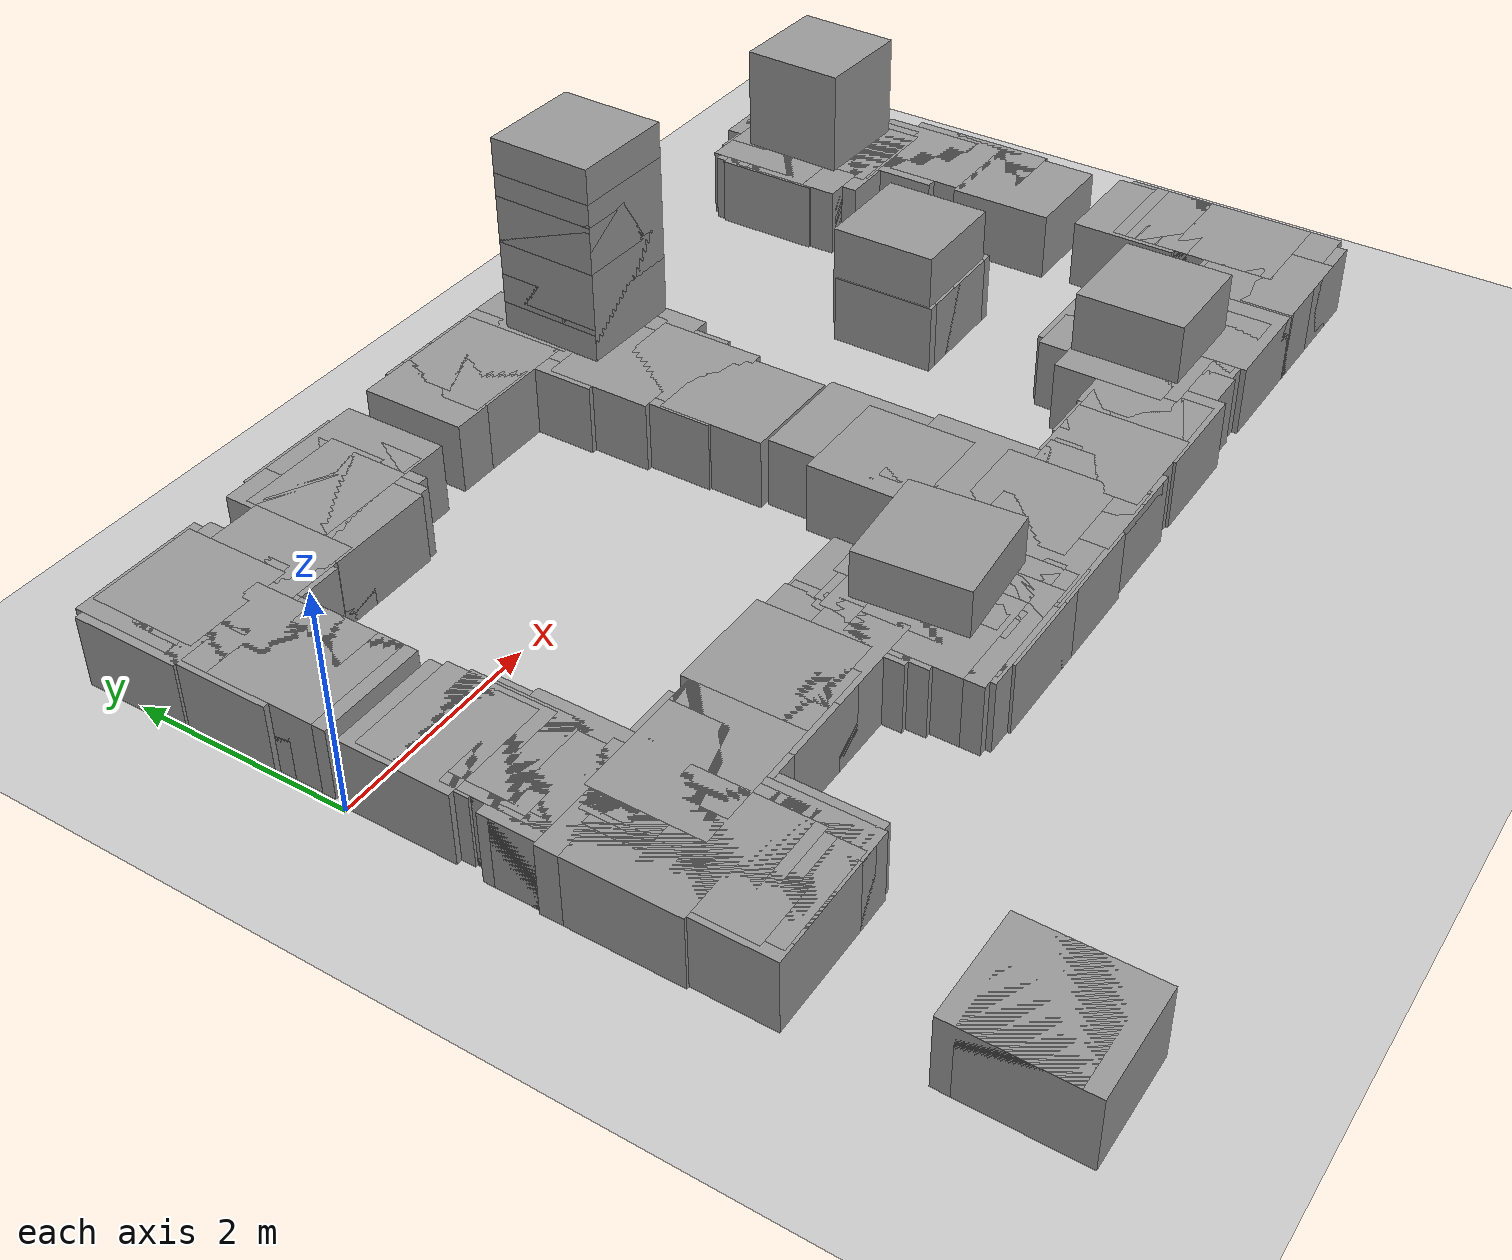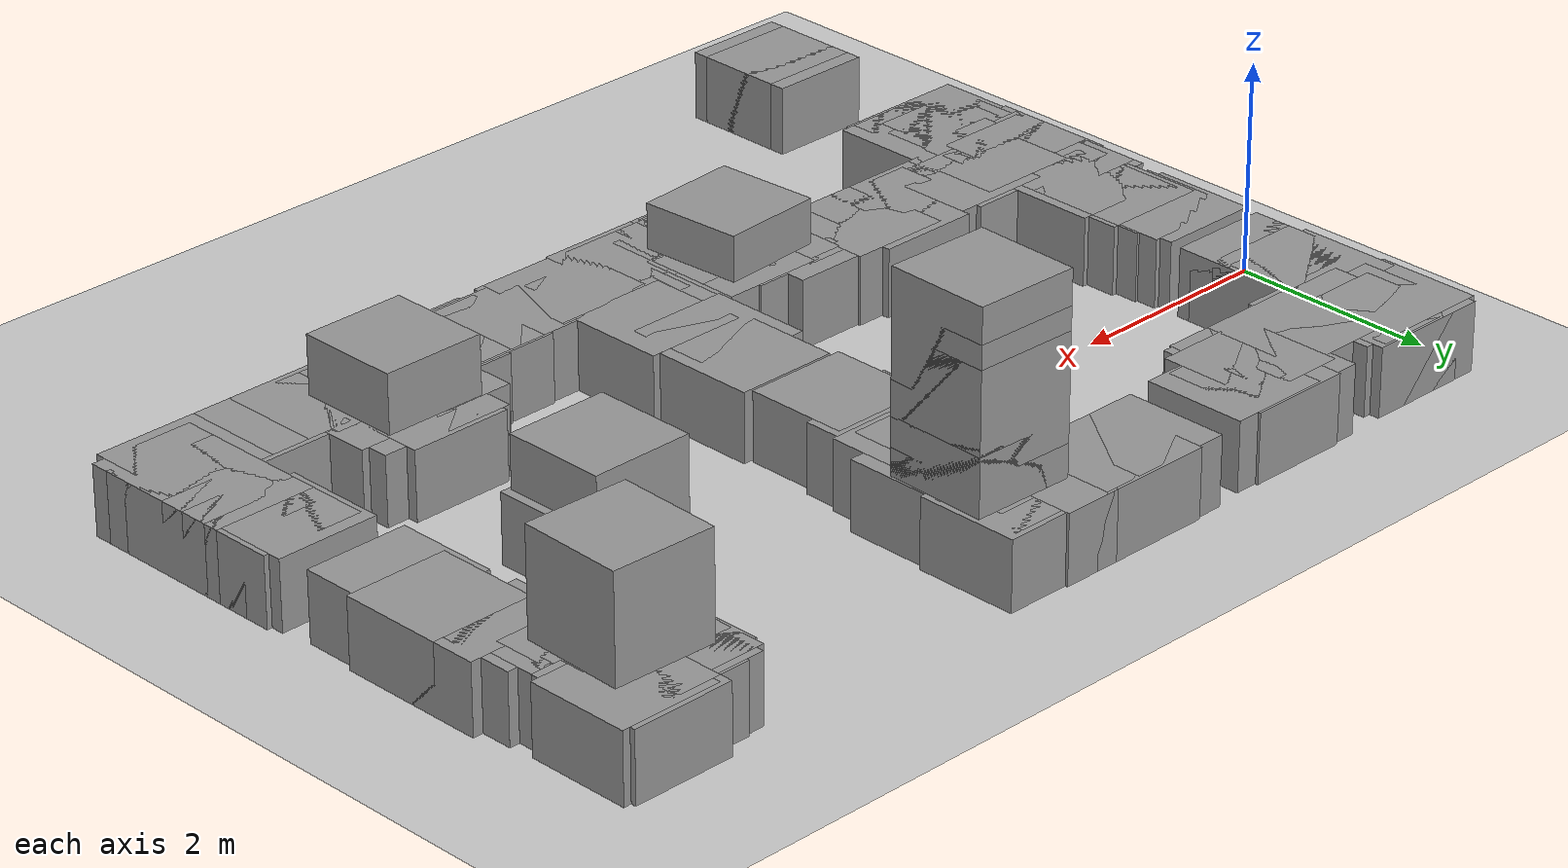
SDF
<sdf version="1.7">
 <world name="default">
  <model name="ground_plane">
   <static>1</static>
   <link name="link">
    <collision name="collision">
     <geometry><plane><normal>0 0 1</normal><size>100 100</size></plane></geometry>
     <surface>
      <contact><collide_bitmask>65535</collide_bitmask></contact>
      <friction><ode><mu>100</mu><mu2>50</mu2></ode></friction>
     </surface>
    </collision>
    <visual name="visual">
     <cast_shadows>0</cast_shadows>
     <geometry><plane><normal>0 0 1</normal><size>100 100</size></plane></geometry>
     <material>
      <script><uri>file://media/materials/scripts/gazebo.material</uri><name>Gazebo/Grey</name></script>
     </material>
    </visual>
   </link>
  </model>
  <include>
   <uri>model://unit_box</uri>
   <name>map_box_350</name>
   <pose>4.15719 2.19754 0.15000 0.00000 0.00000 0.00000</pose>
   <scale>0.05000 0.10000 0.80000</scale>
  </include>
  <include>
   <uri>model://unit_box</uri>
   <name>map_box_351</name>
   <pose>4.38219 2.19754 0.15000 0.00000 0.00000 0.00000</pose>
   <scale>0.10000 0.10000 0.80000</scale>
  </include>
  <include>
   <uri>model://unit_box</uri>
   <name>map_box_352</name>
   <pose>4.73219 2.19754 0.15000 0.00000 0.00000 0.00000</pose>
   <scale>0.40000 0.10000 0.80000</scale>
  </include>
  <include>
   <uri>model://unit_box</uri>
   <name>map_box_358</name>
   <pose>9.48219 2.12254 0.15000 0.00000 0.00000 0.00000</pose>
   <scale>0.10000 0.25000 0.80000</scale>
  </include>
  <include>
   <uri>model://unit_box</uri>
   <name>map_box_360</name>
   <pose>2.38219 2.14754 0.15000 0.00000 0.00000 0.00000</pose>
   <scale>0.40000 0.10000 0.80000</scale>
  </include>
  <include>
   <uri>model://unit_box</uri>
   <name>map_box_361</name>
   <pose>3.88219 2.17254 0.15000 0.00000 0.00000 0.00000</pose>
   <scale>0.50000 0.05000 0.80000</scale>
  </include>
  <include>
   <uri>model://unit_box</uri>
   <name>map_box_362</name>
   <pose>4.25719 2.17254 0.15000 0.00000 0.00000 0.00000</pose>
   <scale>0.15000 0.05000 0.80000</scale>
  </include>
  <include>
   <uri>model://unit_box</uri>
   <name>map_box_363</name>
   <pose>4.48219 2.17254 0.15000 0.00000 0.00000 0.00000</pose>
   <scale>0.10000 0.05000 0.80000</scale>
  </include>
  <include>
   <uri>model://unit_box</uri>
   <name>map_box_364</name>
   <pose>4.95719 1.04754 0.15000 0.00000 0.00000 0.00000</pose>
   <scale>0.05000 2.30000 0.80000</scale>
  </include>
  <include>
   <uri>model://unit_box</uri>
   <name>map_box_365</name>
   <pose>5.10719 1.82254 0.15000 0.00000 0.00000 0.00000</pose>
   <scale>0.05000 0.75000 0.80000</scale>
  </include>
  <include>
   <uri>model://unit_box</uri>
   <name>map_box_366</name>
   <pose>5.35719 2.17254 0.15000 0.00000 0.00000 0.00000</pose>
   <scale>0.15000 0.05000 0.80000</scale>
  </include>
  <include>
   <uri>model://unit_box</uri>
   <name>map_box_367</name>
   <pose>9.40719 2.17254 0.15000 0.00000 0.00000 0.00000</pose>
   <scale>0.05000 0.05000 0.80000</scale>
  </include>
  <include>
   <uri>model://unit_box</uri>
   <name>map_box_371</name>
   <pose>0.55719 2.09754 0.15000 0.00000 0.00000 0.00000</pose>
   <scale>0.25000 0.10000 0.80000</scale>
  </include>
  <include>
   <uri>model://unit_box</uri>
   <name>map_box_372</name>
   <pose>0.78219 2.09754 0.15000 0.00000 0.00000 0.00000</pose>
   <scale>0.10000 0.10000 0.80000</scale>
  </include>
  <include>
   <uri>model://unit_box</uri>
   <name>map_box_373</name>
   <pose>2.15719 2.12254 0.15000 0.00000 0.00000 0.00000</pose>
   <scale>0.05000 0.05000 0.80000</scale>
  </include>
  <include>
   <uri>model://unit_box</uri>
   <name>map_box_374</name>
   <pose>2.60719 2.12254 0.15000 0.00000 0.00000 0.00000</pose>
   <scale>0.05000 0.05000 0.80000</scale>
  </include>
  <include>
   <uri>model://unit_box</uri>
   <name>map_box_375</name>
   <pose>4.90719 1.59754 0.15000 0.00000 0.00000 0.00000</pose>
   <scale>0.05000 1.10000 0.80000</scale>
  </include>
  <include>
   <uri>model://unit_box</uri>
   <name>map_box_376</name>
   <pose>5.25719 2.12254 0.15000 0.00000 0.00000 0.00000</pose>
   <scale>0.25000 0.05000 0.80000</scale>
  </include>
  <include>
   <uri>model://unit_box</uri>
   <name>map_box_377</name>
   <pose>0.70719 2.07254 0.15000 0.00000 0.00000 0.00000</pose>
   <scale>0.05000 0.05000 0.80000</scale>
  </include>
  <include>
   <uri>model://unit_box</uri>
   <name>map_box_378</name>
   <pose>0.85719 1.99754 0.15000 0.00000 0.00000 0.00000</pose>
   <scale>0.05000 0.20000 0.80000</scale>
  </include>
  <include>
   <uri>model://unit_box</uri>
   <name>map_box_379</name>
   <pose>2.20719 1.94754 0.15000 0.00000 0.00000 0.00000</pose>
   <scale>0.05000 0.30000 0.80000</scale>
  </include>
  <include>
   <uri>model://unit_box</uri>
   <name>map_box_380</name>
   <pose>5.15719 0.99754 0.15000 0.00000 0.00000 0.00000</pose>
   <scale>0.05000 2.20000 0.80000</scale>
  </include>
  <include>
   <uri>model://unit_box</uri>
   <name>map_box_381</name>
   <pose>9.10719 2.04754 0.15000 0.00000 0.00000 0.00000</pose>
   <scale>0.05000 0.10000 0.80000</scale>
  </include>
  <include>
   <uri>model://unit_box</uri>
   <name>map_box_382</name>
   <pose>9.40719 2.04754 0.15000 0.00000 0.00000 0.00000</pose>
   <scale>0.05000 0.10000 0.80000</scale>
  </include>
  <include>
   <uri>model://unit_box</uri>
   <name>map_box_385</name>
   <pose>0.48219 2.02254 0.15000 0.00000 0.00000 0.00000</pose>
   <scale>0.10000 0.05000 0.80000</scale>
  </include>
  <include>
   <uri>model://unit_box</uri>
   <name>map_box_386</name>
   <pose>8.93219 2.02254 0.15000 0.00000 0.00000 0.00000</pose>
   <scale>0.30000 0.05000 0.80000</scale>
  </include>
  <include>
   <uri>model://unit_box</uri>
   <name>map_box_387</name>
   <pose>9.25719 2.02254 0.15000 0.00000 0.00000 0.00000</pose>
   <scale>0.25000 0.05000 0.80000</scale>
  </include>
  <include>
   <uri>model://unit_box</uri>
   <name>map_box_390</name>
   <pose>0.65719 1.97254 0.15000 0.00000 0.00000 0.00000</pose>
   <scale>0.05000 0.05000 0.80000</scale>
  </include>
  <include>
   <uri>model://unit_box</uri>
   <name>map_box_391</name>
   <pose>8.85719 1.94754 0.15000 0.00000 0.00000 0.00000</pose>
   <scale>0.15000 0.10000 0.80000</scale>
  </include>
  <include>
   <uri>model://unit_box</uri>
   <name>map_box_392</name>
   <pose>0.50719 1.17254 0.15000 0.00000 0.00000 0.00000</pose>
   <scale>0.05000 1.55000 0.80000</scale>
  </include>
  <include>
   <uri>model://unit_box</uri>
   <name>map_box_393</name>
   <pose>0.78219 1.89754 0.15000 0.00000 0.00000 0.00000</pose>
   <scale>0.10000 0.10000 0.80000</scale>
  </include>
  <include>
   <uri>model://unit_box</uri>
   <name>map_box_395</name>
   <pose>0.90719 1.84754 0.15000 0.00000 0.00000 0.00000</pose>
   <scale>0.05000 0.10000 0.80000</scale>
  </include>
  <include>
   <uri>model://unit_box</uri>
   <name>map_box_396</name>
   <pose>1.20719 1.84754 0.15000 0.00000 0.00000 0.00000</pose>
   <scale>0.25000 0.10000 0.80000</scale>
  </include>
  <include>
   <uri>model://unit_box</uri>
   <name>map_box_397</name>
   <pose>1.40719 1.84754 0.15000 0.00000 0.00000 0.00000</pose>
   <scale>0.05000 0.10000 0.80000</scale>
  </include>
  <include>
   <uri>model://unit_box</uri>
   <name>map_box_398</name>
   <pose>1.80719 1.84754 0.15000 0.00000 0.00000 0.00000</pose>
   <scale>0.35000 0.10000 0.80000</scale>
  </include>
  <include>
   <uri>model://unit_box</uri>
   <name>map_box_399</name>
   <pose>2.10719 1.84754 0.15000 0.00000 0.00000 0.00000</pose>
   <scale>0.15000 0.10000 0.80000</scale>
  </include>
  <include>
   <uri>model://unit_box</uri>
   <name>map_box_400</name>
   <pose>8.83219 1.84754 0.15000 0.00000 0.00000 0.00000</pose>
   <scale>0.10000 0.10000 0.80000</scale>
  </include>
  <include>
   <uri>model://unit_box</uri>
   <name>map_box_402</name>
   <pose>0.83219 1.82254 0.15000 0.00000 0.00000 0.00000</pose>
   <scale>0.10000 0.05000 0.80000</scale>
  </include>
  <include>
   <uri>model://unit_box</uri>
   <name>map_box_403</name>
   <pose>1.00719 1.82254 0.15000 0.00000 0.00000 0.00000</pose>
   <scale>0.15000 0.05000 0.80000</scale>
  </include>
  <include>
   <uri>model://unit_box</uri>
   <name>map_box_404</name>
   <pose>1.35719 1.82254 0.15000 0.00000 0.00000 0.00000</pose>
   <scale>0.05000 0.05000 0.80000</scale>
  </include>
  <include>
   <uri>model://unit_box</uri>
   <name>map_box_405</name>
   <pose>1.53219 1.82254 0.15000 0.00000 0.00000 0.00000</pose>
   <scale>0.20000 0.05000 0.80000</scale>
  </include>
  <include>
   <uri>model://unit_box</uri>
   <name>map_box_406</name>
   <pose>2.00719 1.82254 0.15000 0.00000 0.00000 0.00000</pose>
   <scale>0.05000 0.05000 0.80000</scale>
  </include>
  <include>
   <uri>model://unit_box</uri>
   <name>map_box_407</name>
   <pose>8.90719 1.59754 0.15000 0.00000 0.00000 0.00000</pose>
   <scale>0.05000 0.50000 0.80000</scale>
  </include>
  <include>
   <uri>model://unit_box</uri>
   <name>map_box_409</name>
   <pose>0.95719 1.77254 0.15000 0.00000 0.00000 0.00000</pose>
   <scale>0.05000 0.05000 0.80000</scale>
  </include>
  <include>
   <uri>model://unit_box</uri>
   <name>map_box_410</name>
   <pose>8.85719 1.59754 0.15000 0.00000 0.00000 0.00000</pose>
   <scale>0.05000 0.40000 0.80000</scale>
  </include>
  <include>
   <uri>model://unit_box</uri>
   <name>map_box_413</name>
   <pose>9.25719 1.49754 0.15000 0.00000 0.00000 0.00000</pose>
   <scale>0.05000 0.20000 0.80000</scale>
  </include>
  <include>
   <uri>model://unit_box</uri>
   <name>map_box_414</name>
   <pose>9.40719 1.52254 0.15000 0.00000 0.00000 0.00000</pose>
   <scale>0.15000 0.15000 0.80000</scale>
  </include>
  <include>
   <uri>model://unit_box</uri>
   <name>map_box_418</name>
   <pose>9.18219 1.47254 0.15000 0.00000 0.00000 0.00000</pose>
   <scale>0.10000 0.15000 0.80000</scale>
  </include>
  <include>
   <uri>model://unit_box</uri>
   <name>map_box_419</name>
   <pose>9.30719 1.47254 0.15000 0.00000 0.00000 0.00000</pose>
   <scale>0.05000 0.15000 0.80000</scale>
  </include>
  <include>
   <uri>model://unit_box</uri>
   <name>map_box_420</name>
   <pose>9.50719 0.89754 0.15000 0.00000 0.00000 0.00000</pose>
   <scale>0.05000 1.30000 0.80000</scale>
  </include>
  <include>
   <uri>model://unit_box</uri>
   <name>map_box_427</name>
   <pose>9.03219 1.44754 0.15000 0.00000 0.00000 0.00000</pose>
   <scale>0.20000 0.10000 0.80000</scale>
  </include>
  <include>
   <uri>model://unit_box</uri>
   <name>map_box_428</name>
   <pose>9.55719 -0.35246 0.15000 0.00000 0.00000 0.00000</pose>
   <scale>0.05000 3.70000 0.80000</scale>
  </include>
  <include>
   <uri>model://unit_box</uri>
   <name>map_box_441</name>
   <pose>5.10719 0.64754 0.15000 0.00000 0.00000 0.00000</pose>
   <scale>0.05000 1.50000 0.80000</scale>
  </include>
  <include>
   <uri>model://unit_box</uri>
   <name>map_box_442</name>
   <pose>5.30719 1.34754 0.15000 0.00000 0.00000 0.00000</pose>
   <scale>0.25000 0.10000 0.80000</scale>
  </include>
  <include>
   <uri>model://unit_box</uri>
   <name>map_box_479</name>
   <pose>0.55719 1.02254 0.15000 0.00000 0.00000 0.00000</pose>
   <scale>0.05000 0.15000 0.80000</scale>
  </include>
  <include>
   <uri>model://unit_box</uri>
   <name>map_box_485</name>
   <pose>0.55719 0.77254 0.15000 0.00000 0.00000 0.00000</pose>
   <scale>0.05000 0.05000 0.80000</scale>
  </include>
  <include>
   <uri>model://unit_box</uri>
   <name>map_box_486</name>
   <pose>5.00719 0.44754 0.15000 0.00000 0.00000 0.00000</pose>
   <scale>0.05000 0.60000 0.80000</scale>
  </include>
  <include>
   <uri>model://unit_box</uri>
   <name>map_box_487</name>
   <pose>0.55719 0.64754 0.15000 0.00000 0.00000 0.00000</pose>
   <scale>0.05000 0.10000 0.80000</scale>
  </include>
  <include>
   <uri>model://unit_box</uri>
   <name>map_box_488</name>
   <pose>9.60719 0.59754 0.15000 0.00000 0.00000 0.00000</pose>
   <scale>0.05000 0.20000 0.80000</scale>
  </include>
  <include>
   <uri>model://unit_box</uri>
   <name>map_box_503</name>
   <pose>9.60719 0.17254 0.15000 0.00000 0.00000 0.00000</pose>
   <scale>0.05000 0.45000 0.80000</scale>
  </include>
  <include>
   <uri>model://unit_box</uri>
   <name>map_box_528</name>
   <pose>5.03219 -0.05246 0.15000 0.00000 0.00000 0.00000</pose>
   <scale>0.10000 0.10000 0.80000</scale>
  </include>
  <include>
   <uri>model://unit_box</uri>
   <name>map_box_534</name>
   <pose>7.55719 -0.22746 0.15000 0.00000 0.00000 0.00000</pose>
   <scale>0.15000 0.15000 0.80000</scale>
  </include>
  <include>
   <uri>model://unit_box</uri>
   <name>map_box_536</name>
   <pose>7.65719 -0.22746 0.15000 0.00000 0.00000 0.00000</pose>
   <scale>0.05000 0.05000 0.80000</scale>
  </include>
  <include>
   <uri>model://unit_box</uri>
   <name>map_box_538</name>
   <pose>9.60719 -1.62746 0.15000 0.00000 0.00000 0.00000</pose>
   <scale>0.05000 2.75000 0.80000</scale>
  </include>
  <include>
   <uri>model://unit_box</uri>
   <name>map_box_542</name>
   <pose>0.53219 -0.47746 0.15000 0.00000 0.00000 0.00000</pose>
   <scale>0.20000 0.05000 0.80000</scale>
  </include>
  <include>
   <uri>model://unit_box</uri>
   <name>map_box_543</name>
   <pose>0.58219 -0.60246 0.15000 0.00000 0.00000 0.00000</pose>
   <scale>0.10000 0.20000 0.80000</scale>
  </include>
  <include>
   <uri>model://unit_box</uri>
   <name>map_box_545</name>
   <pose>0.65719 -1.02746 0.15000 0.00000 0.00000 0.00000</pose>
   <scale>0.05000 0.95000 0.80000</scale>
  </include>
  <include>
   <uri>model://unit_box</uri>
   <name>map_box_547</name>
   <pose>0.60719 -0.80246 0.15000 0.00000 0.00000 0.00000</pose>
   <scale>0.05000 0.20000 0.80000</scale>
  </include>
  <include>
   <uri>model://unit_box</uri>
   <name>map_box_550</name>
   <pose>0.60719 -1.02746 0.15000 0.00000 0.00000 0.00000</pose>
   <scale>0.05000 0.15000 0.80000</scale>
  </include>
  <include>
   <uri>model://unit_box</uri>
   <name>map_box_553</name>
   <pose>5.10719 -1.07746 0.15000 0.00000 0.00000 0.00000</pose>
   <scale>0.25000 0.05000 0.80000</scale>
  </include>
  <include>
   <uri>model://unit_box</uri>
   <name>map_box_558</name>
   <pose>4.98219 -1.52746 0.15000 0.00000 0.00000 0.00000</pose>
   <scale>0.10000 0.85000 0.80000</scale>
  </include>
  <include>
   <uri>model://unit_box</uri>
   <name>map_box_559</name>
   <pose>5.18219 -2.07746 0.15000 0.00000 0.00000 0.00000</pose>
   <scale>0.10000 1.95000 0.80000</scale>
  </include>
  <include>
   <uri>model://unit_box</uri>
   <name>map_box_561</name>
   <pose>0.60719 -1.20246 0.15000 0.00000 0.00000 0.00000</pose>
   <scale>0.05000 0.10000 0.80000</scale>
  </include>
  <include>
   <uri>model://unit_box</uri>
   <name>map_box_562</name>
   <pose>0.70719 -1.32746 0.15000 0.00000 0.00000 0.00000</pose>
   <scale>0.05000 0.25000 0.80000</scale>
  </include>
  <include>
   <uri>model://unit_box</uri>
   <name>map_box_564</name>
   <pose>0.60719 -1.32746 0.15000 0.00000 0.00000 0.00000</pose>
   <scale>0.05000 0.05000 0.80000</scale>
  </include>
  <include>
   <uri>model://unit_box</uri>
   <name>map_box_566</name>
   <pose>0.58219 -2.07746 0.15000 0.00000 0.00000 0.00000</pose>
   <scale>0.10000 1.35000 0.80000</scale>
  </include>
  <include>
   <uri>model://unit_box</uri>
   <name>map_box_569</name>
   <pose>0.50719 -1.72746 0.15000 0.00000 0.00000 0.00000</pose>
   <scale>0.05000 0.05000 0.80000</scale>
  </include>
  <include>
   <uri>model://unit_box</uri>
   <name>map_box_570</name>
   <pose>9.65719 -1.75246 0.15000 0.00000 0.00000 0.00000</pose>
   <scale>0.05000 0.10000 0.80000</scale>
  </include>
  <include>
   <uri>model://unit_box</uri>
   <name>map_box_571</name>
   <pose>0.50719 -1.82746 0.15000 0.00000 0.00000 0.00000</pose>
   <scale>0.05000 0.05000 0.80000</scale>
  </include>
  <include>
   <uri>model://unit_box</uri>
   <name>map_box_574</name>
   <pose>5.00719 -2.52746 0.15000 0.00000 0.00000 0.00000</pose>
   <scale>0.05000 1.15000 0.80000</scale>
  </include>
  <include>
   <uri>model://unit_box</uri>
   <name>map_box_575</name>
   <pose>9.65719 -2.00246 0.15000 0.00000 0.00000 0.00000</pose>
   <scale>0.05000 0.10000 0.80000</scale>
  </include>
  <include>
   <uri>model://unit_box</uri>
   <name>map_box_578</name>
   <pose>2.35719 -2.10246 0.15000 0.00000 0.00000 0.00000</pose>
   <scale>1.95000 0.10000 0.80000</scale>
  </include>
  <include>
   <uri>model://unit_box</uri>
   <name>map_box_579</name>
   <pose>1.18219 -2.12746 0.15000 0.00000 0.00000 0.00000</pose>
   <scale>0.40000 0.05000 0.80000</scale>
  </include>
  <include>
   <uri>model://unit_box</uri>
   <name>map_box_580</name>
   <pose>3.35719 -2.57746 0.15000 0.00000 0.00000 0.00000</pose>
   <scale>0.05000 0.95000 0.80000</scale>
  </include>
  <include>
   <uri>model://unit_box</uri>
   <name>map_box_581</name>
   <pose>9.65719 -2.12746 0.15000 0.00000 0.00000 0.00000</pose>
   <scale>0.05000 0.05000 0.80000</scale>
  </include>
  <include>
   <uri>model://unit_box</uri>
   <name>map_box_583</name>
   <pose>1.10719 -2.17746 0.15000 0.00000 0.00000 0.00000</pose>
   <scale>0.35000 0.05000 0.80000</scale>
  </include>
  <include>
   <uri>model://unit_box</uri>
   <name>map_box_584</name>
   <pose>1.35719 -2.17746 0.15000 0.00000 0.00000 0.00000</pose>
   <scale>0.05000 0.05000 0.80000</scale>
  </include>
  <include>
   <uri>model://unit_box</uri>
   <name>map_box_585</name>
   <pose>1.50719 -2.17746 0.15000 0.00000 0.00000 0.00000</pose>
   <scale>0.05000 0.05000 0.80000</scale>
  </include>
  <include>
   <uri>model://unit_box</uri>
   <name>map_box_586</name>
   <pose>1.83219 -2.17746 0.15000 0.00000 0.00000 0.00000</pose>
   <scale>0.20000 0.05000 0.80000</scale>
  </include>
  <include>
   <uri>model://unit_box</uri>
   <name>map_box_587</name>
   <pose>2.08219 -2.17746 0.15000 0.00000 0.00000 0.00000</pose>
   <scale>0.20000 0.05000 0.80000</scale>
  </include>
  <include>
   <uri>model://unit_box</uri>
   <name>map_box_588</name>
   <pose>2.63219 -2.17746 0.15000 0.00000 0.00000 0.00000</pose>
   <scale>0.20000 0.05000 0.80000</scale>
  </include>
  <include>
   <uri>model://unit_box</uri>
   <name>map_box_589</name>
   <pose>3.30719 -2.20246 0.15000 0.00000 0.00000 0.00000</pose>
   <scale>0.05000 0.10000 0.80000</scale>
  </include>
  <include>
   <uri>model://unit_box</uri>
   <name>map_box_590</name>
   <pose>0.48219 -2.22746 0.15000 0.00000 0.00000 0.00000</pose>
   <scale>0.10000 0.05000 0.80000</scale>
  </include>
  <include>
   <uri>model://unit_box</uri>
   <name>map_box_591</name>
   <pose>0.95719 -2.22746 0.15000 0.00000 0.00000 0.00000</pose>
   <scale>0.05000 0.05000 0.80000</scale>
  </include>
  <include>
   <uri>model://unit_box</uri>
   <name>map_box_592</name>
   <pose>1.10719 -2.22746 0.15000 0.00000 0.00000 0.00000</pose>
   <scale>0.05000 0.05000 0.80000</scale>
  </include>
  <include>
   <uri>model://unit_box</uri>
   <name>map_box_593</name>
   <pose>1.95719 -2.22746 0.15000 0.00000 0.00000 0.00000</pose>
   <scale>0.15000 0.05000 0.80000</scale>
  </include>
  <include>
   <uri>model://unit_box</uri>
   <name>map_box_594</name>
   <pose>2.70719 -2.22746 0.15000 0.00000 0.00000 0.00000</pose>
   <scale>0.15000 0.05000 0.80000</scale>
  </include>
  <include>
   <uri>model://unit_box</uri>
   <name>map_box_595</name>
   <pose>7.68219 -2.22746 0.15000 0.00000 0.00000 0.00000</pose>
   <scale>0.70000 0.05000 0.80000</scale>
  </include>
  <include>
   <uri>model://unit_box</uri>
   <name>map_box_596</name>
   <pose>9.65719 -2.22746 0.15000 0.00000 0.00000 0.00000</pose>
   <scale>0.05000 0.05000 0.80000</scale>
  </include>
  <include>
   <uri>model://unit_box</uri>
   <name>map_box_598</name>
   <pose>0.50719 -2.27746 0.15000 0.00000 0.00000 0.00000</pose>
   <scale>0.05000 0.05000 0.80000</scale>
  </include>
  <include>
   <uri>model://unit_box</uri>
   <name>map_box_599</name>
   <pose>0.90719 -2.27746 0.15000 0.00000 0.00000 0.00000</pose>
   <scale>0.05000 0.05000 0.80000</scale>
  </include>
  <include>
   <uri>model://unit_box</uri>
   <name>map_box_600</name>
   <pose>7.60719 -2.27746 0.15000 0.00000 0.00000 0.00000</pose>
   <scale>0.55000 0.05000 0.80000</scale>
  </include>
  <include>
   <uri>model://unit_box</uri>
   <name>map_box_601</name>
   <pose>7.98219 -2.52746 0.15000 0.00000 0.00000 0.00000</pose>
   <scale>0.10000 0.55000 0.80000</scale>
  </include>
  <include>
   <uri>model://unit_box</uri>
   <name>map_box_602</name>
   <pose>0.85719 -2.32746 0.15000 0.00000 0.00000 0.00000</pose>
   <scale>0.05000 0.05000 0.80000</scale>
  </include>
  <include>
   <uri>model://unit_box</uri>
   <name>map_box_603</name>
   <pose>3.30719 -2.40246 0.15000 0.00000 0.00000 0.00000</pose>
   <scale>0.05000 0.20000 0.80000</scale>
  </include>
  <include>
   <uri>model://unit_box</uri>
   <name>map_box_604</name>
   <pose>3.95719 -2.40246 0.15000 0.00000 0.00000 0.00000</pose>
   <scale>0.05000 0.20000 0.80000</scale>
  </include>
  <include>
   <uri>model://unit_box</uri>
   <name>map_box_605</name>
   <pose>7.35719 -2.55246 0.15000 0.00000 0.00000 0.00000</pose>
   <scale>0.05000 0.50000 0.80000</scale>
  </include>
  <include>
   <uri>model://unit_box</uri>
   <name>map_box_606</name>
   <pose>7.90719 -2.32746 0.15000 0.00000 0.00000 0.00000</pose>
   <scale>0.05000 0.05000 0.80000</scale>
  </include>
  <include>
   <uri>model://unit_box</uri>
   <name>map_box_607</name>
   <pose>9.65719 -2.32746 0.15000 0.00000 0.00000 0.00000</pose>
   <scale>0.05000 0.05000 0.80000</scale>
  </include>
  <include>
   <uri>model://unit_box</uri>
   <name>map_box_609</name>
   <pose>0.80719 -2.37746 0.15000 0.00000 0.00000 0.00000</pose>
   <scale>0.05000 0.05000 0.80000</scale>
  </include>
  <include>
   <uri>model://unit_box</uri>
   <name>map_box_610</name>
   <pose>3.63219 -2.37746 0.15000 0.00000 0.00000 0.00000</pose>
   <scale>0.10000 0.05000 0.80000</scale>
  </include>
  <include>
   <uri>model://unit_box</uri>
   <name>map_box_611</name>
   <pose>4.00719 -2.40246 0.15000 0.00000 0.00000 0.00000</pose>
   <scale>0.05000 0.10000 0.80000</scale>
  </include>
  <include>
   <uri>model://unit_box</uri>
   <name>map_box_612</name>
   <pose>7.40719 -2.67746 0.15000 0.00000 0.00000 0.00000</pose>
   <scale>0.05000 0.65000 0.80000</scale>
  </include>
  <include>
   <uri>model://unit_box</uri>
   <name>map_box_613</name>
   <pose>0.48219 -2.42746 0.15000 0.00000 0.00000 0.00000</pose>
   <scale>0.10000 0.05000 0.80000</scale>
  </include>
  <include>
   <uri>model://unit_box</uri>
   <name>map_box_614</name>
   <pose>3.60719 -2.45246 0.15000 0.00000 0.00000 0.00000</pose>
   <scale>0.05000 0.10000 0.80000</scale>
  </include>
  <include>
   <uri>model://unit_box</uri>
   <name>map_box_616</name>
   <pose>3.55719 -2.52746 0.15000 0.00000 0.00000 0.00000</pose>
   <scale>0.05000 0.15000 0.80000</scale>
  </include>
  <include>
   <uri>model://unit_box</uri>
   <name>map_box_617</name>
   <pose>3.90719 -2.60246 0.15000 0.00000 0.00000 0.00000</pose>
   <scale>0.05000 0.30000 0.80000</scale>
  </include>
  <include>
   <uri>model://unit_box</uri>
   <name>map_box_618</name>
   <pose>9.65719 -2.47746 0.15000 0.00000 0.00000 0.00000</pose>
   <scale>0.05000 0.05000 0.80000</scale>
  </include>
  <include>
   <uri>model://unit_box</uri>
   <name>map_box_619</name>
   <pose>3.95719 -2.57746 0.15000 0.00000 0.00000 0.00000</pose>
   <scale>0.05000 0.05000 0.80000</scale>
  </include>
  <include>
   <uri>model://unit_box</uri>
   <name>map_box_620</name>
   <pose>5.05719 -2.80246 0.15000 0.00000 0.00000 0.00000</pose>
   <scale>0.05000 0.50000 0.80000</scale>
  </include>
  <include>
   <uri>model://unit_box</uri>
   <name>map_box_621</name>
   <pose>9.65719 -2.57746 0.15000 0.00000 0.00000 0.00000</pose>
   <scale>0.05000 0.05000 0.80000</scale>
  </include>
  <include>
   <uri>model://unit_box</uri>
   <name>map_box_627</name>
   <pose>0.65719 -2.67746 0.15000 0.00000 0.00000 0.00000</pose>
   <scale>0.05000 0.05000 0.80000</scale>
  </include>
  <include>
   <uri>model://unit_box</uri>
   <name>map_box_628</name>
   <pose>4.00719 -2.77746 0.15000 0.00000 0.00000 0.00000</pose>
   <scale>0.05000 0.25000 0.80000</scale>
  </include>
  <include>
   <uri>model://unit_box</uri>
   <name>map_box_629</name>
   <pose>9.65719 -2.70246 0.15000 0.00000 0.00000 0.00000</pose>
   <scale>0.05000 0.10000 0.80000</scale>
  </include>
  <include>
   <uri>model://unit_box</uri>
   <name>map_box_634</name>
   <pose>3.68219 -2.72746 0.15000 0.00000 0.00000 0.00000</pose>
   <scale>0.10000 0.05000 0.80000</scale>
  </include>
  <include>
   <uri>model://unit_box</uri>
   <name>map_box_635</name>
   <pose>3.95719 -2.75246 0.15000 0.00000 0.00000 0.00000</pose>
   <scale>0.05000 0.10000 0.80000</scale>
  </include>
  <include>
   <uri>model://unit_box</uri>
   <name>map_box_642</name>
   <pose>0.55719 -2.95246 0.15000 0.00000 0.00000 0.00000</pose>
   <scale>0.05000 0.40000 0.80000</scale>
  </include>
  <include>
   <uri>model://unit_box</uri>
   <name>map_box_643</name>
   <pose>0.65719 -2.77746 0.15000 0.00000 0.00000 0.00000</pose>
   <scale>0.05000 0.05000 0.80000</scale>
  </include>
  <include>
   <uri>model://unit_box</uri>
   <name>map_box_644</name>
   <pose>3.65719 -2.82746 0.15000 0.00000 0.00000 0.00000</pose>
   <scale>0.05000 0.15000 0.80000</scale>
  </include>
  <include>
   <uri>model://unit_box</uri>
   <name>map_box_649</name>
   <pose>3.40719 -2.82746 0.15000 0.00000 0.00000 0.00000</pose>
   <scale>0.05000 0.05000 0.80000</scale>
  </include>
  <include>
   <uri>model://unit_box</uri>
   <name>map_box_650</name>
   <pose>7.95719 -2.87746 0.15000 0.00000 0.00000 0.00000</pose>
   <scale>0.05000 0.15000 0.80000</scale>
  </include>
  <include>
   <uri>model://unit_box</uri>
   <name>map_box_651</name>
   <pose>9.65719 -2.87746 0.15000 0.00000 0.00000 0.00000</pose>
   <scale>0.05000 0.15000 0.80000</scale>
  </include>
  <include>
   <uri>model://unit_box</uri>
   <name>map_box_656</name>
   <pose>0.60719 -2.87746 0.15000 0.00000 0.00000 0.00000</pose>
   <scale>0.05000 0.05000 0.80000</scale>
  </include>
  <include>
   <uri>model://unit_box</uri>
   <name>map_box_657</name>
   <pose>3.95719 -2.87746 0.15000 0.00000 0.00000 0.00000</pose>
   <scale>0.05000 0.05000 0.80000</scale>
  </include>
  <include>
   <uri>model://unit_box</uri>
   <name>map_box_658</name>
   <pose>7.45719 -2.92746 0.15000 0.00000 0.00000 0.00000</pose>
   <scale>0.05000 0.15000 0.80000</scale>
  </include>
  <include>
   <uri>model://unit_box</uri>
   <name>map_box_659</name>
   <pose>7.90719 -2.90246 0.15000 0.00000 0.00000 0.00000</pose>
   <scale>0.05000 0.10000 0.80000</scale>
  </include>
  <include>
   <uri>model://unit_box</uri>
   <name>map_box_661</name>
   <pose>3.40719 -3.00246 0.15000 0.00000 0.00000 0.00000</pose>
   <scale>0.05000 0.20000 0.80000</scale>
  </include>
  <include>
   <uri>model://unit_box</uri>
   <name>map_box_662</name>
   <pose>3.60719 -3.00246 0.15000 0.00000 0.00000 0.00000</pose>
   <scale>0.05000 0.20000 0.80000</scale>
  </include>
  <include>
   <uri>model://unit_box</uri>
   <name>map_box_663</name>
   <pose>6.48219 -2.97746 0.15000 0.00000 0.00000 0.00000</pose>
   <scale>0.10000 0.15000 0.80000</scale>
  </include>
  <include>
   <uri>model://unit_box</uri>
   <name>map_box_664</name>
   <pose>6.98219 -2.95246 0.15000 0.00000 0.00000 0.00000</pose>
   <scale>0.80000 0.10000 0.80000</scale>
  </include>
  <include>
   <uri>model://unit_box</uri>
   <name>map_box_665</name>
   <pose>7.85719 -2.92746 0.15000 0.00000 0.00000 0.00000</pose>
   <scale>0.05000 0.05000 0.80000</scale>
  </include>
  <include>
   <uri>model://unit_box</uri>
   <name>map_box_666</name>
   <pose>8.78219 -2.92746 0.15000 0.00000 0.00000 0.00000</pose>
   <scale>1.60000 0.05000 0.80000</scale>
  </include>
  <include>
   <uri>model://unit_box</uri>
   <name>map_box_667</name>
   <pose>3.55719 -3.02746 0.15000 0.00000 0.00000 0.00000</pose>
   <scale>0.05000 0.15000 0.80000</scale>
  </include>
  <include>
   <uri>model://unit_box</uri>
   <name>map_box_668</name>
   <pose>3.68219 -3.00246 0.15000 0.00000 0.00000 0.00000</pose>
   <scale>0.10000 0.10000 0.80000</scale>
  </include>
  <include>
   <uri>model://unit_box</uri>
   <name>map_box_669</name>
   <pose>3.90719 -3.00246 0.15000 0.00000 0.00000 0.00000</pose>
   <scale>0.15000 0.10000 0.80000</scale>
  </include>
  <include>
   <uri>model://unit_box</uri>
   <name>map_box_670</name>
   <pose>4.05719 -3.00246 0.15000 0.00000 0.00000 0.00000</pose>
   <scale>0.05000 0.10000 0.80000</scale>
  </include>
  <include>
   <uri>model://unit_box</uri>
   <name>map_box_671</name>
   <pose>5.25719 -3.02746 0.15000 0.00000 0.00000 0.00000</pose>
   <scale>0.05000 0.15000 0.80000</scale>
  </include>
  <include>
   <uri>model://unit_box</uri>
   <name>map_box_672</name>
   <pose>5.35719 -3.02746 0.15000 0.00000 0.00000 0.00000</pose>
   <scale>0.05000 0.15000 0.80000</scale>
  </include>
  <include>
   <uri>model://unit_box</uri>
   <name>map_box_673</name>
   <pose>5.93219 -3.00246 0.15000 0.00000 0.00000 0.00000</pose>
   <scale>1.00000 0.10000 0.80000</scale>
  </include>
  <include>
   <uri>model://unit_box</uri>
   <name>map_box_674</name>
   <pose>6.55719 -3.00246 0.15000 0.00000 0.00000 0.00000</pose>
   <scale>0.05000 0.10000 0.80000</scale>
  </include>
  <include>
   <uri>model://unit_box</uri>
   <name>map_box_675</name>
   <pose>8.15719 -2.97746 0.15000 0.00000 0.00000 0.00000</pose>
   <scale>0.35000 0.05000 0.80000</scale>
  </include>
  <include>
   <uri>model://unit_box</uri>
   <name>map_box_676</name>
   <pose>8.70719 -2.97746 0.15000 0.00000 0.00000 0.00000</pose>
   <scale>0.65000 0.05000 0.80000</scale>
  </include>
  <include>
   <uri>model://unit_box</uri>
   <name>map_box_677</name>
   <pose>9.18219 -2.97746 0.15000 0.00000 0.00000 0.00000</pose>
   <scale>0.20000 0.05000 0.80000</scale>
  </include>
  <include>
   <uri>model://unit_box</uri>
   <name>map_box_678</name>
   <pose>9.53219 -2.97746 0.15000 0.00000 0.00000 0.00000</pose>
   <scale>0.10000 0.05000 0.80000</scale>
  </include>
  <include>
   <uri>model://unit_box</uri>
   <name>map_box_680</name>
   <pose>3.48219 -3.05246 0.15000 0.00000 0.00000 0.00000</pose>
   <scale>0.10000 0.10000 0.80000</scale>
  </include>
  <include>
   <uri>model://unit_box</uri>
   <name>map_box_681</name>
   <pose>3.78219 -3.02746 0.15000 0.00000 0.00000 0.00000</pose>
   <scale>0.10000 0.05000 0.80000</scale>
  </include>
  <include>
   <uri>model://unit_box</uri>
   <name>map_box_682</name>
   <pose>4.00719 -3.05246 0.15000 0.00000 0.00000 0.00000</pose>
   <scale>0.05000 0.10000 0.80000</scale>
  </include>
  <include>
   <uri>model://unit_box</uri>
   <name>map_box_683</name>
   <pose>4.53219 -3.02746 0.15000 0.00000 0.00000 0.00000</pose>
   <scale>0.90000 0.05000 0.80000</scale>
  </include>
  <include>
   <uri>model://unit_box</uri>
   <name>map_box_684</name>
   <pose>5.30719 -3.05246 0.15000 0.00000 0.00000 0.00000</pose>
   <scale>0.05000 0.10000 0.80000</scale>
  </include>
  <include>
   <uri>model://unit_box</uri>
   <name>map_box_685</name>
   <pose>5.40719 -3.05246 0.15000 0.00000 0.00000 0.00000</pose>
   <scale>0.05000 0.10000 0.80000</scale>
  </include>
  <include>
   <uri>model://unit_box</uri>
   <name>map_box_686</name>
   <pose>6.60719 -3.02746 0.15000 0.00000 0.00000 0.00000</pose>
   <scale>0.05000 0.05000 0.80000</scale>
  </include>
  <include>
   <uri>model://unit_box</uri>
   <name>map_box_687</name>
   <pose>0.60719 -3.10246 0.15000 0.00000 0.00000 0.00000</pose>
   <scale>0.05000 0.10000 0.80000</scale>
  </include>
  <include>
   <uri>model://unit_box</uri>
   <name>map_box_688</name>
   <pose>0.75719 -3.10246 0.15000 0.00000 0.00000 0.00000</pose>
   <scale>0.05000 0.10000 0.80000</scale>
  </include>
  <include>
   <uri>model://unit_box</uri>
   <name>map_box_689</name>
   <pose>0.90719 -3.10246 0.15000 0.00000 0.00000 0.00000</pose>
   <scale>0.05000 0.10000 0.80000</scale>
  </include>
  <include>
   <uri>model://unit_box</uri>
   <name>map_box_690</name>
   <pose>3.73219 -3.07746 0.15000 0.00000 0.00000 0.00000</pose>
   <scale>0.10000 0.05000 0.80000</scale>
  </include>
  <include>
   <uri>model://unit_box</uri>
   <name>map_box_691</name>
   <pose>4.55719 -3.07746 0.15000 0.00000 0.00000 0.00000</pose>
   <scale>0.85000 0.05000 0.80000</scale>
  </include>
  <include>
   <uri>model://unit_box</uri>
   <name>map_box_692</name>
   <pose>0.50719 -3.12746 0.15000 0.00000 0.00000 0.00000</pose>
   <scale>0.05000 0.05000 0.80000</scale>
  </include>
  <include>
   <uri>model://unit_box</uri>
   <name>map_box_693</name>
   <pose>0.68219 -3.12746 0.15000 0.00000 0.00000 0.00000</pose>
   <scale>0.10000 0.05000 0.80000</scale>
  </include>
  <include>
   <uri>model://unit_box</uri>
   <name>map_box_694</name>
   <pose>0.83219 -3.12746 0.15000 0.00000 0.00000 0.00000</pose>
   <scale>0.10000 0.05000 0.80000</scale>
  </include>
  <include>
   <uri>model://unit_box</uri>
   <name>map_box_700</name>
   <pose>0.65719 -5.12746 0.15000 0.00000 0.00000 0.00000</pose>
   <scale>0.05000 0.05000 0.80000</scale>
  </include>
  <include>
   <uri>model://unit_box</uri>
   <name>map_box_701</name>
   <pose>0.65719 -5.27746 0.15000 0.00000 0.00000 0.00000</pose>
   <scale>0.05000 0.05000 0.80000</scale>
  </include>
  <include>
   <uri>model://unit_box</uri>
   <name>side_table</name>
   <pose>3.78750 -2.62250 0.58500 0.00000 0.00000 0.07131</pose>
   <scale>0.42107 0.60033 0.03000</scale>
  </include>
  <include>
   <uri>model://unit_box</uri>
   <name>cabinet_0</name>
   <pose>5.29500 1.77750 0.05000 0.00000 0.00000 1.54641</pose>
   <scale>0.82024 0.29000 0.10000</scale>
  </include>
  <include>
   <uri>model://unit_box</uri>
   <name>cabinet_1</name>
   <pose>5.29500 1.77750 0.41000 0.00000 0.00000 1.54641</pose>
   <scale>0.82024 0.29000 0.02000</scale>
  </include>
  <include>
   <uri>model://unit_box</uri>
   <name>cabinet_2</name>
   <pose>5.29500 1.77750 0.69500 0.00000 0.00000 1.54641</pose>
   <scale>0.82024 0.29000 0.03000</scale>
  </include>
  <include>
   <uri>model://unit_box</uri>
   <name>cabinet_3</name>
   <pose>5.29500 1.77750 1.04500 0.00000 0.00000 1.54641</pose>
   <scale>0.82024 0.29000 0.03000</scale>
  </include>
  <include>
   <uri>model://unit_box</uri>
   <name>cabinet_4</name>
   <pose>5.29500 1.77750 1.46500 0.00000 0.00000 1.54641</pose>
   <scale>0.82024 0.29000 0.03000</scale>
  </include>
  <include>
   <uri>model://unit_box</uri>
   <name>cabinet_5</name>
   <pose>5.29500 1.77750 1.68500 0.00000 0.00000 1.54641</pose>
   <scale>0.82024 0.29000 0.03000</scale>
  </include>
  <include>
   <uri>model://unit_box</uri>
   <name>cabinet_6</name>
   <pose>5.29500 1.77750 2.01500 0.00000 0.00000 1.54641</pose>
   <scale>0.82024 0.29000 0.03000</scale>
  </include>
  <include>
   <uri>model://unit_box</uri>
   <name>dining_table</name>
   <pose>7.57000 -0.20000 0.65000 0.00000 0.00000 1.57080</pose>
   <scale>0.78000 0.80000 0.16000</scale>
  </include>
  <include>
   <uri>model://unit_box</uri>
   <name>dishwasher</name>
   <pose>7.65750 -2.56250 0.71000 0.00000 0.00000 0.00000</pose>
   <scale>0.56000 0.70007 0.28000</scale>
  </include>
  <include>
   <uri>model://unit_box</uri>
   <name>refrigerator</name>
   <pose>9.16750 1.74750 1.21500 0.00000 0.00000 1.53748</pose>
   <scale>0.60033 0.60033 1.29000</scale>
  </include>
 </world>
</sdf>
